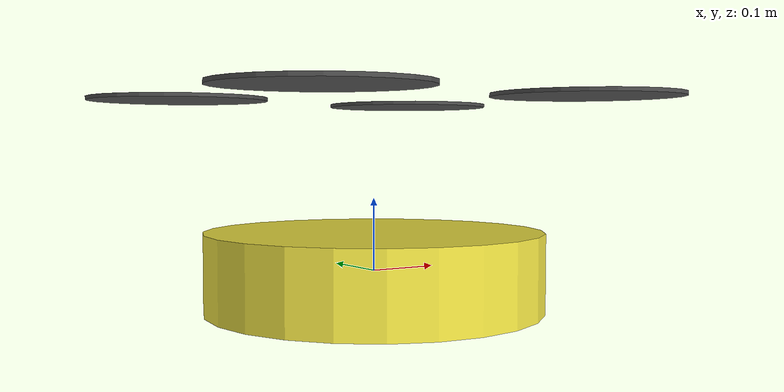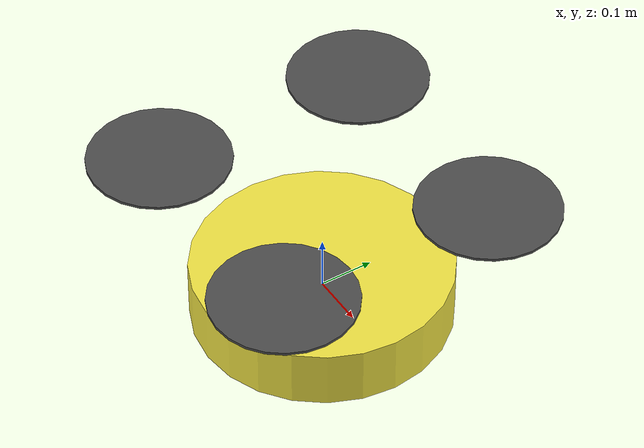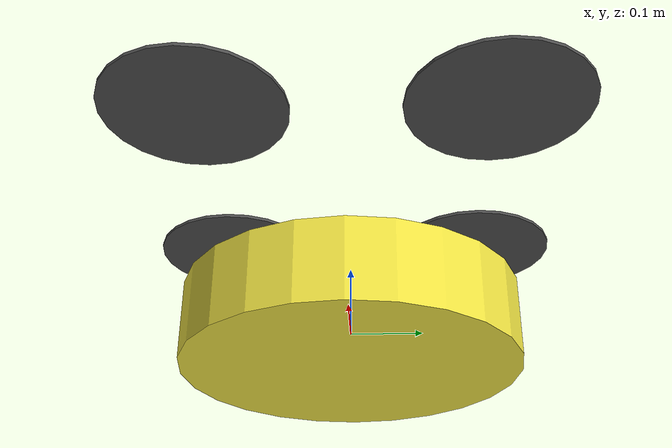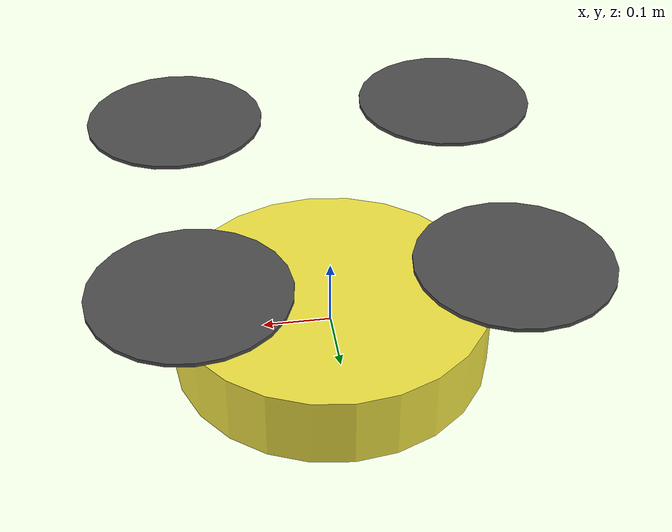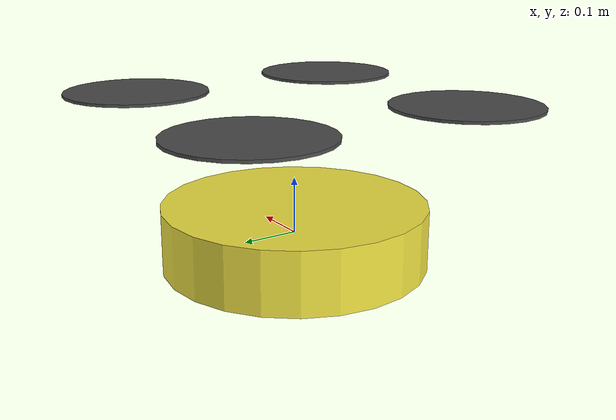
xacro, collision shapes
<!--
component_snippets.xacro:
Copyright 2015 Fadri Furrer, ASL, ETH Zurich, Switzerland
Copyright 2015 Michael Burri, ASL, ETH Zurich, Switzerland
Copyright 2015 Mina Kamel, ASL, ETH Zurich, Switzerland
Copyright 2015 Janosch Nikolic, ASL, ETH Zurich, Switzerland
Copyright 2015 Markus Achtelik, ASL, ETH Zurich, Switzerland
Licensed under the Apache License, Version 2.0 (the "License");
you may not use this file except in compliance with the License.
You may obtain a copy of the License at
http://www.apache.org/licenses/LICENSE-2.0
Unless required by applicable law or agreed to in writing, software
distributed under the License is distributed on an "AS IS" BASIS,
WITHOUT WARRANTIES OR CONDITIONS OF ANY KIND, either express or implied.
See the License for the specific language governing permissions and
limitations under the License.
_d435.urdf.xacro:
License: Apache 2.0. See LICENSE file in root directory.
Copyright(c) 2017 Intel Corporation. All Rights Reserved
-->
<?xml version="1.0"?>

<robot name="spacer5g" xmlns:xacro="http://ros.org/wiki/xacro">
  <!-- Properties that can be assigned at build time as arguments.
  Is there a reason not to make all properties arguments?
  -->
  <xacro:arg name='mavlink_addr' default='INADDR_ANY' />
  <xacro:arg name='mavlink_tcp_port' default='4560' />
  <xacro:arg name='mavlink_udp_port' default='14560' />
  <xacro:arg name='visual_material' default='DarkGrey' />
  <xacro:arg name='enable_mavlink_interface' default='true' />
  <xacro:arg name='enable_gps_plugin' default='true' />
  <xacro:arg name='gps_noise' default='false' />
  <xacro:arg name='enable_ground_truth' default='true' />
  <xacro:arg name='enable_logging' default='false' />
  <xacro:arg name='robot_namespace' default='' />
  <xacro:arg name='camera_namespace' default='' />

  <!-- macros for gazebo plugins, sensors -->
  <xacro:include filename="$(find robots_description)/urdf/component_snippets.xacro" />

  <!-- Instantiate spacer5g "mechanics" -->
  <xacro:include filename="$(find sesame_ul_uavs)/models/spacer5g/geometry.xacro" />

  <xacro:if value="$(arg enable_gps_plugin)">
    <!-- Instantiate gps plugin. -->
    <xacro:gps_plugin_macro
      namespace="${namespace}"
      gps_noise="$(arg gps_noise)"
      >
    </xacro:gps_plugin_macro>
  </xacro:if>

  <xacro:if value="$(arg enable_mavlink_interface)">
    <!-- Instantiate mavlink telemetry interface. -->
    <xacro:mavlink_interface_macro
      namespace="${namespace}"
      imu_sub_topic="/imu"
      mavlink_addr="$(arg mavlink_addr)"
      mavlink_tcp_port="$(arg mavlink_tcp_port)"
      mavlink_udp_port="$(arg mavlink_udp_port)"
      >
    </xacro:mavlink_interface_macro>
  </xacro:if>

  <!-- Mount an ADIS16448 IMU. -->
  <xacro:imu_plugin_macro
    namespace="${namespace}"
    imu_suffix=""
    parent_link="base_link"
    imu_topic="/imu"
    mass_imu_sensor="0.015"
    gyroscope_noise_density="0.0003394"
    gyroscopoe_random_walk="0.000038785"
    gyroscope_bias_correlation_time="1000.0"
    gyroscope_turn_on_bias_sigma="0.0087"
    accelerometer_noise_density="0.004"
    accelerometer_random_walk="0.006"
    accelerometer_bias_correlation_time="300.0"
    accelerometer_turn_on_bias_sigma="0.1960"
  >
    <inertia ixx="0.00001" ixy="0.0" ixz="0.0" iyy="0.00001" iyz="0.0" izz="0.00001" />
    <origin xyz="0 0 0" rpy="0 0 0" />
  </xacro:imu_plugin_macro>

  <xacro:if value="$(arg enable_ground_truth)">
    <!-- Mount an IMU providing ground truth. -->
    <xacro:imu_plugin_macro
      namespace="${namespace}"
      imu_suffix="gt"
      parent_link="base_link"
      imu_topic="ground_truth/imu"
      mass_imu_sensor="0.00001"
      gyroscope_noise_density="0.0"
      gyroscopoe_random_walk="0.0"
      gyroscope_bias_correlation_time="1000.0"
      gyroscope_turn_on_bias_sigma="0.0"
      accelerometer_noise_density="0.0"
      accelerometer_random_walk="0.0"
      accelerometer_bias_correlation_time="300.0"
      accelerometer_turn_on_bias_sigma="0.0"
    >
      <inertia ixx="0.00001" ixy="0.0" ixz="0.0" iyy="0.00001" iyz="0.0" izz="0.00001" />
      <origin xyz="0 0 0" rpy="0 0 0" />
    </xacro:imu_plugin_macro>

    <!-- Mount a generic odometry sensor providing ground truth. -->
    <xacro:odometry_plugin_macro
      namespace="${namespace}/ground_truth"
      odometry_sensor_suffix="gt"
      parent_link="base_link"
      pose_topic="pose"
      pose_with_covariance_topic="pose_with_covariance"
      position_topic="position"
      transform_topic="transform"
      odometry_topic="odometry"
      parent_frame_id="world"
      mass_odometry_sensor="0.00001"
      measurement_divisor="1"
      measurement_delay="0"
      unknown_delay="0.0"
      noise_normal_position="0 0 0"
      noise_normal_quaternion="0 0 0"
      noise_normal_linear_velocity="0 0 0"
      noise_normal_angular_velocity="0 0 0"
      noise_uniform_position="0 0 0"
      noise_uniform_quaternion="0 0 0"
      noise_uniform_linear_velocity="0 0 0"
      noise_uniform_angular_velocity="0 0 0"
      enable_odometry_map="false"
      odometry_map=""
      image_scale=""
    >
      <inertia ixx="0.00001" ixy="0.0" ixz="0.0" iyy="0.00001" iyz="0.0" izz="0.00001" /> <!-- [kg.m^2] [kg.m^2] [kg.m^2] [kg.m^2] [kg.m^2] [kg.m^2] -->
      <origin xyz="0.0 0.0 0.0" rpy="0.0 0.0 0.0" />
    </xacro:odometry_plugin_macro>
  </xacro:if>

  <xacro:if value="$(arg enable_logging)">
    <!-- Instantiate a logger -->
    <xacro:bag_plugin_macro
      namespace="${namespace}"
      bag_file="$(arg log_file)"
      rotor_velocity_slowdown_sim="${rotor_velocity_slowdown_sim}"
    >
    </xacro:bag_plugin_macro>
  </xacro:if>

  <gazebo>
  <plugin name="p3d_v2_base_controller" filename="libgazebo_ros_p3d_v2.so">
    <alwaysOn>true</alwaysOn>
    <updateRate>50.0</updateRate>
    <bodyName>base_link</bodyName>
    <topicName>ground_truth/state</topicName>
    <gaussianNoise>0.0</gaussianNoise>
    <frameName>map</frameName>
    <xyzOffsets>0 0 0</xyzOffsets>
    <rpyOffsets>0 0 0</rpyOffsets>
  </plugin>
  </gazebo>

</robot>

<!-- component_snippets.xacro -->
<robot xmlns:xacro="http://ros.org/wiki/xacro">
  <!-- Macro to add logging to a bag file. -->
  <xacro:macro name="bag_plugin_macro"
    params="namespace bag_file rotor_velocity_slowdown_sim">
    <gazebo>
      <plugin filename="librotors_gazebo_bag_plugin.so" name="rosbag">
        <robotNamespace>${namespace}</robotNamespace>
        <bagFileName>${bag_file}</bagFileName>
        <linkName>base_link</linkName>
        <frameId>base_link</frameId>
        <commandAttitudeThrustSubTopic>command/attitude</commandAttitudeThrustSubTopic>
        <commandAttitudeThrustPubTopic>command/attitude</commandAttitudeThrustPubTopic>
        <rotorVelocitySlowdownSim>${rotor_velocity_slowdown_sim}</rotorVelocitySlowdownSim>
      </plugin>
    </gazebo>
  </xacro:macro>

  <!-- Macro to add a camera. -->
  <xacro:macro name="camera_macro"
    params="namespace parent_link camera_suffix frame_rate
      horizontal_fov image_width image_height image_format min_distance
      max_distance noise_mean noise_stddev enable_visual *cylinder *origin">
    <link name="${namespace}/camera_${camera_suffix}_link">
      <collision>
        <origin xyz="0 0 0" rpy="0 0 0" />
        <geometry>
          <xacro:insert_block name="cylinder" />
        </geometry>
      </collision>
      <xacro:if value="${enable_visual}">
        <visual>
          <origin xyz="0 0 0" rpy="0 0 0" />
          <geometry>
            <xacro:insert_block name="cylinder" />
          </geometry>
          <material name="red" />
        </visual>
      </xacro:if>
      <inertial>
        <mass value="1e-5" />
        <origin xyz="0 0 0" rpy="0 0 0" />
        <inertia ixx="1e-6" ixy="0" ixz="0" iyy="1e-6" iyz="0" izz="1e-6" />
      </inertial>
    </link>
    <joint name="${namespace}/camera_${camera_suffix}_joint" type="fixed">
      <xacro:insert_block name="origin" />
      <parent link="${parent_link}" />
      <child link="${namespace}/camera_${camera_suffix}_link" />
    </joint>
    <gazebo reference="${namespace}/camera_${camera_suffix}_link">
      <sensor type="camera" name="${namespace}_camera_${camera_suffix}">
        <update_rate>${frame_rate}</update_rate>
        <camera name="head">
          <horizontal_fov>${horizontal_fov}</horizontal_fov>
          <image>
            <width>${image_width}</width>
            <height>${image_height}</height>
            <format>${image_format}</format>
          </image>
          <clip>
            <near>${min_distance}</near>
            <far>${max_distance}</far>
          </clip>
          <noise>
            <type>gaussian</type>
            <!-- Noise is sampled independently per pixel on each frame.
                 That pixel's noise value is added to each of its color
                 channels, which at that point lie in the range [0,1]. -->
            <mean>${noise_mean}</mean>
            <stddev>${noise_stddev}</stddev>
          </noise>
        </camera>
        <plugin name="${namespace}_camera_${camera_suffix}_controller" filename="libgazebo_ros_camera.so">
          <robotNamespace>${namespace}</robotNamespace>
          <alwaysOn>true</alwaysOn>
          <updateRate>${frame_rate}</updateRate>
          <cameraName>camera_${camera_suffix}</cameraName>
          <imageTopicName>image_raw</imageTopicName>
          <cameraInfoTopicName>camera_info</cameraInfoTopicName>
          <frameName>camera_${camera_suffix}_link</frameName>
          <hackBaseline>0.0</hackBaseline>
          <distortionK1>0.0</distortionK1>
          <distortionK2>0.0</distortionK2>
          <distortionK3>0.0</distortionK3>
          <distortionT1>0.0</distortionT1>
          <distortionT2>0.0</distortionT2>
        </plugin>
      </sensor>
    </gazebo>
  </xacro:macro>

  <!-- Macro to add the controller interface. -->
  <xacro:macro name="controller_plugin_macro" params="namespace imu_sub_topic">
    <gazebo>
      <plugin name="controller_interface" filename="librotors_gazebo_controller_interface.so">
        <robotNamespace>${namespace}</robotNamespace>
        <commandAttitudeThrustSubTopic>/command/attitude</commandAttitudeThrustSubTopic>
        <commandRateThrustSubTopic>/command/rate</commandRateThrustSubTopic>
        <commandMotorSpeedSubTopic>/command/motor_speed</commandMotorSpeedSubTopic>
        <imuSubTopic>/${imu_sub_topic}</imuSubTopic>
        <motorSpeedCommandPubTopic>/gazebo/command/motor_speed</motorSpeedCommandPubTopic>
      </plugin>
    </gazebo>
  </xacro:macro>

  <!-- Macro to add the gps plugin. -->
  <xacro:macro name="gps_plugin_macro" params="namespace gps_noise">
    <gazebo>
      <plugin name='gps_plugin' filename='libgazebo_gps_plugin.so'>
        <robotNamespace>${namespace}</robotNamespace>
        <gpsNoise>${gps_noise}</gpsNoise>
      </plugin>
      <plugin name='magnetometer_plugin' filename='libgazebo_magnetometer_plugin.so'>
        <robotNamespace/>
        <pubRate>20</pubRate>
        <noiseDensity>0.0004</noiseDensity>
        <randomWalk>6.4e-06</randomWalk>
        <biasCorrelationTime>600</biasCorrelationTime>
        <magTopic>/mag</magTopic>
      </plugin>
      <plugin name='barometer_plugin' filename='libgazebo_barometer_plugin.so'>
        <robotNamespace/>
        <pubRate>10</pubRate>
        <baroTopic>/baro</baroTopic>
      </plugin>
    </gazebo>
  </xacro:macro>

  <!-- Macro to add the mavlink interface. -->
  <xacro:macro name="mavlink_interface_macro" params="namespace imu_sub_topic mavlink_addr mavlink_tcp_port mavlink_udp_port octo:=false">
    <xacro:property name="is_octo" value="${octo}"/>
    <gazebo>
      <plugin name="mavlink_interface" filename="libgazebo_mavlink_interface.so">
        <robotNamespace>${namespace}</robotNamespace>
        <imuSubTopic>${imu_sub_topic}</imuSubTopic>
        <gpsSubTopic>/gps</gpsSubTopic>
        <magSubTopic>/mag</magSubTopic>
        <baroSubTopic>/baro</baroSubTopic>
        <mavlink_addr>$(arg mavlink_addr)</mavlink_addr>
        <mavlink_udp_port>$(arg mavlink_udp_port)</mavlink_udp_port>
        <mavlink_tcp_port>$(arg mavlink_tcp_port)</mavlink_tcp_port>
        <serialEnabled>0</serialEnabled>
        <serialDevice>/dev/ttyACM0</serialDevice>
        <baudRate>921600</baudRate>
        <qgc_addr>INADDR_ANY</qgc_addr>
        <qgc_udp_port>14550</qgc_udp_port>
        <sdk_addr>INADDR_ANY</sdk_addr>
        <sdk_udp_port>14540</sdk_udp_port>
        <hil_mode>0</hil_mode>
        <hil_state_level>0</hil_state_level>
        <vehicle_is_tailsitter>0</vehicle_is_tailsitter>
        <send_vision_estimation>1</send_vision_estimation>
        <send_odometry>0</send_odometry>
        <enable_lockstep>1</enable_lockstep>
        <use_tcp>1</use_tcp>
        <motorSpeedCommandPubTopic>/gazebo/command/motor_speed</motorSpeedCommandPubTopic>
        <control_channels>
          <channel name="rotor1">
            <input_index>0</input_index>
            <input_offset>0</input_offset>
            <input_scaling>1000</input_scaling>
            <zero_position_disarmed>0</zero_position_disarmed>
            <zero_position_armed>100</zero_position_armed>
            <joint_control_type>velocity</joint_control_type>
          </channel>
          <channel name="rotor2">
            <input_index>1</input_index>
            <input_offset>0</input_offset>
            <input_scaling>1000</input_scaling>
            <zero_position_disarmed>0</zero_position_disarmed>
            <zero_position_armed>100</zero_position_armed>
            <joint_control_type>velocity</joint_control_type>
          </channel>
          <channel name="rotor3">
            <input_index>2</input_index>
            <input_offset>0</input_offset>
            <input_scaling>1000</input_scaling>
            <zero_position_disarmed>0</zero_position_disarmed>
            <zero_position_armed>100</zero_position_armed>
            <joint_control_type>velocity</joint_control_type>
          </channel>
          <channel name="rotor4">
            <input_index>3</input_index>
            <input_offset>0</input_offset>
            <input_scaling>1000</input_scaling>
            <zero_position_disarmed>0</zero_position_disarmed>
            <zero_position_armed>100</zero_position_armed>
            <joint_control_type>velocity</joint_control_type>
          </channel>
          <channel name="rotor5">
            <input_index>4</input_index>
            <input_offset>0</input_offset>
            <input_scaling>1000</input_scaling>
            <zero_position_disarmed>0</zero_position_disarmed>
            <zero_position_armed>100</zero_position_armed>
            <joint_control_type>velocity</joint_control_type>
          </channel>
          <channel name="rotor6">
            <input_index>5</input_index>
            <input_offset>0</input_offset>
            <input_scaling>1000</input_scaling>
            <zero_position_disarmed>0</zero_position_disarmed>
            <zero_position_armed>100</zero_position_armed>
            <joint_control_type>velocity</joint_control_type>
          </channel>
          <!-- Add extra velocity outputs for rotors 7 and 8 -->
          <xacro:if value="${is_octo}">
            <channel name="rotor7">
              <input_index>6</input_index>
              <input_offset>0</input_offset>
              <input_scaling>1000</input_scaling>
              <zero_position_disarmed>0</zero_position_disarmed>
              <zero_position_armed>100</zero_position_armed>
              <joint_control_type>velocity</joint_control_type>
            </channel>
            <channel name="rotor8">
              <input_index>7</input_index>
              <input_offset>0</input_offset>
              <input_scaling>1000</input_scaling>
              <zero_position_disarmed>0</zero_position_disarmed>
              <zero_position_armed>100</zero_position_armed>
              <joint_control_type>velocity</joint_control_type>
            </channel>
          </xacro:if>
          <!-- Else -->
          <xacro:if value="${not is_octo}">
            <channel name="rotor7">
              <input_index>6</input_index>
              <input_offset>0</input_offset>
              <!-- joint limits [-0.524, 0.524] -->
              <input_scaling>0.524</input_scaling>
              <zero_position_disarmed>0</zero_position_disarmed>
              <zero_position_armed>0</zero_position_armed>
              <joint_control_type>position</joint_control_type>
              <joint_name>zephyr_delta_wing::flap_right_joint</joint_name>
              <joint_control_pid>
                <p>10.0</p>
                <i>0</i>
                <d>0</d>
                <iMax>0</iMax>
                <iMin>0</iMin>
                <cmdMax>20</cmdMax>
                <cmdMin>-20</cmdMin>
              </joint_control_pid>
            </channel>
            <channel name="rotor8">
              <input_index>7</input_index>
              <input_offset>0</input_offset>
              <input_scaling>0.524</input_scaling>
              <zero_position_disarmed>0</zero_position_disarmed>
              <zero_position_armed>0</zero_position_armed>
              <joint_control_type>position</joint_control_type>
            </channel>
          </xacro:if>
        </control_channels>
      </plugin>
    </gazebo>
  </xacro:macro>

  <!-- Macro to add an IMU. -->
  <xacro:macro name="imu_plugin_macro"
    params="namespace imu_suffix parent_link imu_topic
      mass_imu_sensor gyroscope_noise_density gyroscopoe_random_walk
      gyroscope_bias_correlation_time gyroscope_turn_on_bias_sigma
      accelerometer_noise_density accelerometer_random_walk
      accelerometer_bias_correlation_time accelerometer_turn_on_bias_sigma
      *inertia *origin">
    <!-- IMU link -->
    <link name="${namespace}/imu${imu_suffix}_link">
      <inertial>
        <xacro:insert_block name="inertia" />
        <mass value="${mass_imu_sensor}" />  <!-- [kg] -->
        <origin xyz="0 0 0" rpy="0 0 0" />
      </inertial>
    </link>
    <!-- IMU joint -->
    <joint name="${namespace}/imu${imu_suffix}_joint" type="revolute">
      <xacro:insert_block name="origin" />
      <parent link="${parent_link}" />
      <child link="${namespace}/imu${imu_suffix}_link" />
      <limit upper="0" lower="0" effort="0" velocity="0" />
    </joint>
    <gazebo>
      <plugin filename="libgazebo_imu_plugin.so" name="rotors_gazebo_imu${imu_suffix}_plugin">
      <!-- A good description of the IMU parameters can be found in the kalibr documentation:
           https://github.com/ethz-asl/kalibr/wiki/IMU-Noise-Model-and-Intrinsics -->
        <robotNamespace>${namespace}</robotNamespace> <!-- (string, required): ros namespace in which the messages are published -->
        <linkName>${namespace}/imu${imu_suffix}_link</linkName> <!-- (string, required): name of the body which holds the IMU sensor -->
        <imuTopic>${imu_topic}</imuTopic> <!-- (string): name of the sensor output topic and prefix of service names (defaults to imu) -->
        <gyroscopeNoiseDensity>${gyroscope_noise_density}</gyroscopeNoiseDensity> <!-- Gyroscope noise density (two-sided spectrum) [rad/s/sqrt(Hz)] -->
        <gyroscopeRandomWalk>${gyroscopoe_random_walk}</gyroscopeRandomWalk> <!-- Gyroscope bias random walk [rad/s/s/sqrt(Hz)] -->
        <gyroscopeBiasCorrelationTime>${gyroscope_bias_correlation_time}</gyroscopeBiasCorrelationTime> <!-- Gyroscope bias correlation time constant [s] -->
        <gyroscopeTurnOnBiasSigma>${gyroscope_turn_on_bias_sigma}</gyroscopeTurnOnBiasSigma> <!-- Gyroscope turn on bias standard deviation [rad/s] -->
        <accelerometerNoiseDensity>${accelerometer_noise_density}</accelerometerNoiseDensity> <!-- Accelerometer noise density (two-sided spectrum) [m/s^2/sqrt(Hz)] -->
        <accelerometerRandomWalk>${accelerometer_random_walk}</accelerometerRandomWalk> <!-- Accelerometer bias random walk. [m/s^2/s/sqrt(Hz)] -->
        <accelerometerBiasCorrelationTime>${accelerometer_bias_correlation_time}</accelerometerBiasCorrelationTime> <!-- Accelerometer bias correlation time constant [s] -->
        <accelerometerTurnOnBiasSigma>${accelerometer_turn_on_bias_sigma}</accelerometerTurnOnBiasSigma> <!-- Accelerometer turn on bias standard deviation [m/s^2] -->
      </plugin>
    </gazebo>
  </xacro:macro>

<!-- Macro to add a generic odometry sensor. -->
  <xacro:macro name="odometry_plugin_macro"
    params="
      namespace odometry_sensor_suffix parent_link pose_topic pose_with_covariance_topic
      position_topic transform_topic odometry_topic parent_frame_id
      mass_odometry_sensor measurement_divisor measurement_delay unknown_delay
      noise_normal_position noise_normal_quaternion noise_normal_linear_velocity
      noise_normal_angular_velocity noise_uniform_position
      noise_uniform_quaternion noise_uniform_linear_velocity
      noise_uniform_angular_velocity enable_odometry_map odometry_map
      image_scale *inertia *origin">
    <!-- odometry link -->
    <link name="${namespace}/odometry_sensor${odometry_sensor_suffix}_link">
      <inertial>
        <xacro:insert_block name="inertia" />
        <mass value="${mass_odometry_sensor}" />  <!-- [kg] -->
      </inertial>
    </link>
    <!-- odometry joint -->
    <joint name="${namespace}/odometry_sensor${odometry_sensor_suffix}_joint" type="revolute">
      <parent link="${parent_link}" />
      <xacro:insert_block name="origin" />
      <child link="${namespace}/odometry_sensor${odometry_sensor_suffix}_link" />
      <limit upper="0" lower="0" effort="0" velocity="0" />
    </joint>
    <gazebo>
      <plugin filename="libgazebo_odometry_plugin.so" name="odometry_sensor${odometry_sensor_suffix}">
        <linkName>${namespace}/odometry_sensor${odometry_sensor_suffix}_link</linkName>
        <robotNamespace>${namespace}</robotNamespace>
        <poseTopic>${pose_topic}</poseTopic>
        <poseWithCovarianceTopic>${pose_with_covariance_topic}</poseWithCovarianceTopic>
        <positionTopic>${position_topic}</positionTopic>
        <transformTopic>${transform_topic}</transformTopic>
        <odometryTopic>${odometry_topic}</odometryTopic>
        <parentFrameId>${parent_frame_id}</parentFrameId>  <!-- Use the scoped link name here. e.g. Model::link. -->
        <measurementDivisor>${measurement_divisor}</measurementDivisor> <!-- only every (seq % measurementDivisor) == 0 measurement is published [int] -->
        <measurementDelay>${measurement_delay}</measurementDelay> <!-- time that measurement gets held back before it's published in [simulation cycles (int)] -->
        <unknownDelay>${unknown_delay}</unknownDelay> <!-- additional delay, that just gets added to the timestamp [s] -->
        <noiseNormalPosition>${noise_normal_position}</noiseNormalPosition> <!-- standard deviation of additive white gaussian noise [m] -->
        <noiseNormalQuaternion>${noise_normal_quaternion}</noiseNormalQuaternion> <!-- standard deviation white gaussian noise [rad]: q_m = q*quaternionFromSmallAngleApproximation(noiseNormalQ) -->
        <noiseNormalLinearVelocity>${noise_normal_linear_velocity}</noiseNormalLinearVelocity> <!-- standard deviation of additive white gaussian noise [m/s] -->
        <noiseNormalAngularVelocity>${noise_normal_angular_velocity}</noiseNormalAngularVelocity> <!-- standard deviation of additive white gaussian noise [rad/s] -->
        <noiseUniformPosition>${noise_uniform_position}</noiseUniformPosition> <!-- symmetric bounds of uniform noise [m] -->
        <noiseUniformQuaternion>${noise_uniform_quaternion}</noiseUniformQuaternion> <!-- symmetric bounds of uniform noise [rad], computation see above -->
        <noiseUniformLinearVelocity>${noise_uniform_linear_velocity}</noiseUniformLinearVelocity>  <!-- symmetric bounds of uniform noise [m/s] -->
        <noiseUniformAngularVelocity>${noise_uniform_angular_velocity}</noiseUniformAngularVelocity>  <!-- symmetric bounds of uniform noise [rad/s] -->
        <xacro:if value="${enable_odometry_map}">
          <covarianceImage>package://rotors_gazebo/resource/${odometry_map}</covarianceImage>
          <covarianceImageScale>${image_scale}</covarianceImageScale>
        </xacro:if>
      </plugin>
    </gazebo>
  </xacro:macro>

  <!-- Macro to add the wind plugin. -->
  <xacro:macro name="wind_plugin_macro"
    params="namespace xyz_offset wind_direction wind_force_mean
      wind_gust_direction wind_gust_duration wind_gust_start
      wind_gust_force_mean">
    <gazebo>
      <plugin filename="librotors_gazebo_wind_plugin.so" name="wind_plugin">
        <frameId>base_link</frameId>
        <linkName>base_link</linkName>
        <robotNamespace>${namespace}</robotNamespace>
        <xyzOffset>${xyz_offset}</xyzOffset>
        <windDirection>${wind_direction}</windDirection>
        <windForceMean>${wind_force_mean}</windForceMean>
        <windGustDirection>${wind_gust_direction}</windGustDirection>
        <windGustDuration>${wind_gust_duration}</windGustDuration>
        <windGustStart>${wind_gust_start}</windGustStart>
        <windGustForceMean>${wind_gust_force_mean}</windGustForceMean>
      </plugin>
    </gazebo>
  </xacro:macro>

  <!-- VI sensor macros -->
  <!-- Macro to add a VI-sensor camera. -->
  <xacro:macro name="vi_sensor_camera_macro"
    params="namespace parent_link camera_suffix frame_rate *origin">
    <xacro:camera_macro
      namespace="${namespace}"
      parent_link="${parent_link}"
      camera_suffix="${camera_suffix}"
      frame_rate="${frame_rate}"
      horizontal_fov="1.3962634"
      image_width="752"
      image_height="480"
      image_format="L8"
      min_distance="0.02"
      max_distance="30"
      noise_mean="0.0"
      noise_stddev="0.007"
      enable_visual="false">
      <cylinder length="0.01" radius="0.007" />
      <xacro:insert_block name="origin" />
    </xacro:camera_macro>
  </xacro:macro>

  <!-- Macro to add a depth camera on the VI-sensor. -->
  <xacro:macro name="vi_sensor_depth_macro"
    params="namespace parent_link camera_suffix frame_rate *origin">
    <link name="${namespace}/camera_${camera_suffix}_link">
      <collision>
        <origin xyz="0 0 0" rpy="0 0 0" />
        <geometry>
          <cylinder length="0.01" radius="0.007" />
        </geometry>
      </collision>
      <inertial>
        <mass value="1e-5" />
        <origin xyz="0 0 0" rpy="0 0 0" />
        <inertia ixx="1e-6" ixy="0" ixz="0" iyy="1e-6" iyz="0" izz="1e-6" />
      </inertial>
    </link>
    <joint name="${namespace}/camera_${camera_suffix}_joint" type="fixed">
      <xacro:insert_block name="origin" />
      <parent link="${parent_link}" />
      <child link="${namespace}/camera_${camera_suffix}_link" />
      <limit upper="0" lower="0" effort="0" velocity="0" />
    </joint>
    <!-- Optical center of camera -->
    <link name="${namespace}/camera_${camera_suffix}_optical_center_link" />
    <joint name="${namespace}/camera_${camera_suffix}_optical_center_joint" type="fixed">
      <origin xyz="0 0 0" rpy="${-PI/2} 0 ${-PI/2}" />
      <parent link="${namespace}/camera_${camera_suffix}_link" />
      <child link="${namespace}/camera_${camera_suffix}_optical_center_link" />
      <limit upper="0" lower="0" effort="0" velocity="0" />
    </joint>
    <gazebo reference="${namespace}/camera_${camera_suffix}_link">
      <sensor type="depth" name="${namespace}_camera_{camera_suffix}">
        <always_on>true</always_on>
        <update_rate>${frame_rate}</update_rate>
        <camera>
          <horizontal_fov>2</horizontal_fov>
          <image>
            <format>L8</format>
            <width>640</width>
            <height>480</height>
          </image>
          <clip>
            <near>0.01</near>
            <far>100</far>
          </clip>
        </camera>
        <plugin name="${namespace}_camera_{camera_suffix}" filename="libgazebo_ros_openni_kinect.so">
          <robotNamespace>${namespace}</robotNamespace>
          <alwaysOn>true</alwaysOn>
          <baseline>0.11</baseline>
          <updateRate>${frame_rate}</updateRate>
          <cameraName>camera_${camera_suffix}</cameraName>
          <imageTopicName>camera/image_raw</imageTopicName>
          <cameraInfoTopicName>camera/camera_info</cameraInfoTopicName>
          <depthImageTopicName>depth/disparity</depthImageTopicName>
          <depthImageCameraInfoTopicName>depth/camera_info</depthImageCameraInfoTopicName>
          <pointCloudTopicName>depth/points</pointCloudTopicName>
          <frameName>camera_${camera_suffix}_optical_center_link</frameName>
          <pointCloudCutoff>0.5</pointCloudCutoff>
          <distortionK1>0.0</distortionK1>
          <distortionK2>0.0</distortionK2>
          <distortionK3>0.0</distortionK3>
          <distortionT1>0.0</distortionT1>
          <distortionT2>0.0</distortionT2>
        </plugin>
      </sensor>
    </gazebo>
  </xacro:macro>

  <!-- VI-Sensor Macro -->
  <xacro:macro name="vi_sensor_macro" params="namespace parent_link *origin">
    <!-- Vi Sensor Link -->
    <link name="${namespace}/vi_sensor_link">
      <collision>
        <origin xyz="0 0 0" rpy="0 0 0" />
        <geometry>
          <box size="0.03 0.133 0.057" />
        </geometry>
      </collision>

      <visual>
        <origin xyz="0 0 0" rpy="0 0 0" />
        <geometry>
          <mesh filename="package://rotors_description/meshes/vi_sensor.dae" scale="1 1 1" />
        </geometry>
      </visual>

      <inertial>
        <mass value="0.13" />
        <origin xyz="0 0 0" rpy="0 0 0" />
        <inertia ixx="1e-6" ixy="0" ixz="0" iyy="1e-6" iyz="0" izz="1e-6" />
      </inertial>
    </link>
    <joint name="{namespace}_vi_sensor_joint" type="fixed">
      <xacro:insert_block name="origin" />
      <parent link="${parent_link}" />
      <child link="${namespace}/vi_sensor_link" />
    </joint>
    <!-- Cameras -->
    <xacro:if value="$(arg enable_cameras)">
      <!-- Left Camera -->
      <xacro:vi_sensor_camera_macro
        namespace="${namespace}" parent_link="${namespace}/vi_sensor_link"
        camera_suffix="left" frame_rate="30.0">
        <origin xyz="0.015 0.055 0.0065" rpy="0 0 0" />
      </xacro:vi_sensor_camera_macro>
      <!-- Right Camera -->
      <xacro:vi_sensor_camera_macro namespace="${namespace}"
        parent_link="${namespace}/vi_sensor_link"
        camera_suffix="right" frame_rate="30.0">
        <origin xyz="0.015 -0.055 0.0065" rpy="0 0 0" />
      </xacro:vi_sensor_camera_macro>
    </xacro:if>

    <!-- Depth Sensor -->
    <xacro:if value="$(arg enable_depth)">
      <xacro:vi_sensor_depth_macro
        namespace="${namespace}" parent_link="${namespace}/vi_sensor_link"
        camera_suffix="depth" frame_rate="30.0">
        <origin xyz="0.015 0.055 0.0065" rpy="0 0 0" />
      </xacro:vi_sensor_depth_macro>
    </xacro:if>

    <!-- Groundtruth -->
    <xacro:if value="$(arg enable_ground_truth)">
      <!-- Odometry Sensor -->
      <xacro:odometry_plugin_macro
        namespace="${namespace}/ground_truth"
        odometry_sensor_suffix=""
        parent_link="${namespace}/vi_sensor_link"
        pose_topic="pose"
        pose_with_covariance_topic="pose_with_covariance"
        position_topic="position"
        transform_topic="transform"
        odometry_topic="odometry"
        parent_frame_id="world"
        mass_odometry_sensor="0.00001"
        measurement_divisor="1"
        measurement_delay="0"
        unknown_delay="0.0"
        noise_normal_position="0 0 0"
        noise_normal_quaternion="0 0 0"
        noise_normal_linear_velocity="0 0 0"
        noise_normal_angular_velocity="0 0 0"
        noise_uniform_position="0 0 0"
        noise_uniform_quaternion="0 0 0"
        noise_uniform_linear_velocity="0 0 0"
        noise_uniform_angular_velocity="0 0 0"
        enable_odometry_map="false"
        odometry_map=""
        image_scale="">
        <inertia ixx="0.00001" ixy="0.0" ixz="0.0" iyy="0.00001" iyz="0.0" izz="0.00001" /> <!-- [kg.m^2] [kg.m^2] [kg.m^2] [kg.m^2] [kg.m^2] [kg.m^2] -->
        <origin xyz="0.0 0.0 0.0" rpy="0.0 0.0 0.0" />
      </xacro:odometry_plugin_macro>
    </xacro:if>

    <!-- ADIS16448 IMU. -->
    <xacro:imu_plugin_macro
      namespace="${namespace}"
      imu_suffix=""
      parent_link="${namespace}/vi_sensor_link"
      imu_topic="/imu"
      mass_imu_sensor="0.015"
      gyroscope_noise_density="0.0003394"
      gyroscopoe_random_walk="0.000038785"
      gyroscope_bias_correlation_time="1000.0"
      gyroscope_turn_on_bias_sigma="0.0087"
      accelerometer_noise_density="0.004"
      accelerometer_random_walk="0.006"
      accelerometer_bias_correlation_time="300.0"
      accelerometer_turn_on_bias_sigma="0.1960">
      <inertia ixx="0.00001" ixy="0.0" ixz="0.0" iyy="0.00001" iyz="0.0" izz="0.00001" />
      <origin xyz="0.015 0 0.0113" rpy="0 0 0" />
    </xacro:imu_plugin_macro>
  </xacro:macro>

  <!-- Macro to add a laser scanner -->
  <xacro:macro name="laser_scanner"
    params="namespace id pub_topic tf parent_link update_rate sample_count
    angle_min angle_max range_min range_max range_res visualize:=false *origin length:=0.03 radius:=0.04">
    <joint name="${namespace}/laser_${id}_joint" type="fixed">
      <xacro:insert_block name="origin" />
      <parent link="${parent_link}"/>
      <child link="${namespace}/laser_${id}_link"/>
    </joint>
    <link name="${namespace}/laser_${id}_link">
      <collision>
        <origin xyz="0 0 0" rpy="0 0 0"/>
        <geometry>
          <cylinder length="${length}" radius="${radius}" />
        </geometry>
      </collision>
      <visual>
        <origin xyz="0 0 0" rpy="0 0 0"/>
        <geometry>
          <cylinder length="${length}" radius="${radius}" />
        </geometry>
      </visual>
      <inertial>
        <mass value="1e-5" />
        <origin xyz="0 0 0" rpy="0 0 0"/>
        <inertia ixx="1e-6" ixy="0" ixz="0" iyy="1e-6" iyz="0" izz="1e-6" />
      </inertial>
    </link>
    <gazebo reference="${namespace}/laser_${id}_link">
      <sensor type="ray" name="${namespace}_laser_${id}_sensor">
        <pose>0 0 0 0 0 0</pose>
        <visualize>${visualize}</visualize>
        <update_rate>${update_rate}</update_rate>
        <ray>
          <scan>
            <horizontal>
              <samples>${sample_count}</samples>
              <resolution>1</resolution>
              <min_angle>${angle_min}</min_angle>
              <max_angle>${angle_max}</max_angle>
            </horizontal>
          </scan>
          <range>
            <min>${range_min}</min>
            <max>${range_max}</max>
            <resolution>${range_res}</resolution>
          </range>
          <noise>
            <type>gaussian</type>
            <mean>0.0</mean>
            <stddev>0.01</stddev>
          </noise>
        </ray>
        <plugin name="${namespace}_laser_${id}_controller" filename="libgazebo_ros_laser.so">
          <robotNamespace>${namespace}</robotNamespace>
          <topicName>${pub_topic}</topicName>
          <frameName>${tf}</frameName>
        </plugin>
      </sensor>
    </gazebo>
  </xacro:macro>

</robot>

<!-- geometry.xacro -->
<robot name="spacer5g" xmlns:xacro="http://ros.org/wiki/xacro">
  <!-- Properties -->
  <xacro:property name="model_name" value="spacer5g" />
  <xacro:property name="description_package" value="sesame_ul_uavs" />
  <xacro:property name="namespace" value="$(arg robot_namespace)" />
  <xacro:property name="cam_namespace" value="$(arg camera_namespace)" />
  <xacro:property name="rotor_velocity_slowdown_sim" value="10" />
  <xacro:property name="mesh_file" value="multirotor.dae" />
  <xacro:property name="mesh_scale" value="0.001 0.001 0.001"/>
  <xacro:property name="mesh_scale_prop" value="0.001 0.001 0.001"/>
  <xacro:property name="mass" value="1.5" /> <!-- [kg] -->
  <xacro:property name="body_width" value="0.47" />
  <xacro:property name="body_height" value="0.11" />
  <xacro:property name="mass_rotor" value="0.005" /> <!-- [kg] -->
  <xacro:property name="arm_length_front_x" value="0.2025" />
  <xacro:property name="arm_length_back_x" value="0.2025" />
  <xacro:property name="arm_length_front_y" value="0.2025" />
  <xacro:property name="arm_length_back_y" value="0.2025" />
  <xacro:property name="rotor_offset_top" value="0.023" />
  <xacro:property name="radius_rotor" value="0.128" />
  <xacro:property name="motor_constant" value="12.54858e-06" /> <!-- [kg.m/s^2] -->
  <xacro:property name="moment_constant" value="0.08" />
  <xacro:property name="time_constant_up" value="0.0125" />
  <xacro:property name="time_constant_down" value="0.025" />
  <xacro:property name="max_rot_velocity" value="1100" /> <!-- [rad/s] -->
  <xacro:property name="sin30" value="0.5" />
  <xacro:property name="cos30" value="0.866025403784" />
  <xacro:property name="sqrt2" value="1.4142135623730951" />
  <xacro:property name="rotor_drag_coefficient" value="8.06428e-04" />
  <xacro:property name="rolling_moment_coefficient" value="0.000001" />
  <xacro:property name="color" value="$(arg visual_material)" />

  <!-- Property Blocks -->
  <xacro:property name="body_inertia">
    <inertia ixx="0.0347563" ixy="0.0" ixz="0.0" iyy="0.0458929" iyz="0.0" izz="0.0977" /> <!-- [kg.m^2] [kg.m^2] [kg.m^2] [kg.m^2] [kg.m^2] [kg.m^2] -->
  </xacro:property>

  <!-- inertia of a single rotor, assuming it is a cuboid. Height=3mm, width=15mm -->
  <xacro:property name="rotor_inertia">
    <inertia
    ixx="${1/12 * mass_rotor * (0.015 * 0.015 + 0.003 * 0.003) * rotor_velocity_slowdown_sim}"
    iyy="${1/12 * mass_rotor * (4 * radius_rotor * radius_rotor + 0.003 * 0.003) * rotor_velocity_slowdown_sim}"
    izz="${1/12 * mass_rotor * (4 * radius_rotor * radius_rotor + 0.015 * 0.015) * rotor_velocity_slowdown_sim}"
    ixy="0.0" ixz="0.0"  iyz="0.0" /> <!-- [kg.m^2] [kg.m^2] [kg.m^2] [kg.m^2] [kg.m^2] [kg.m^2] -->
  </xacro:property>

  <!--Property cylinder_camera-->
  <xacro:property name="camera_cylinder">
    <box size="0.025 0.1 0.02"/>
  </xacro:property>

  <!-- Included URDF Files -->
  <xacro:include filename="$(find robots_description)/urdf/multirotor_base.xacro" />
  <xacro:include filename="$(find robots_description)/urdf/component_snippets.xacro" />
  <xacro:include filename="$(find sesame_ul_uavs)/urdf/_d435.urdf.xacro" />

  <xacro:sensor_d435
    name="camera"
    namespace="${cam_namespace}"
    parent="base_link">
    <origin xyz="0 0 0" rpy="0 0 0"/>
  </xacro:sensor_d435>

  <!-- Instantiate multirotor_base_macro once -->
  <xacro:multirotor_base_macro
    model_name="${model_name}"
    description_package="${description_package}"
    robot_namespace="${namespace}"
    mass="${mass}"
    body_width="${body_width}"
    body_height="${body_height}"
    mesh_file="${mesh_file}"
    mesh_scale="${mesh_scale}"
    color="DarkGrey"
    >
    <xacro:insert_block name="body_inertia" />
  </xacro:multirotor_base_macro>

  <!-- Instantiate rotors -->

    <xacro:vertical_rotor robot_namespace="${namespace}"
    suffix="front_right"
    direction="ccw"
    motor_constant="${motor_constant}"
    moment_constant="${moment_constant}"
    description_package="${description_package}"
    parent="base_link"
    mass_rotor="${mass_rotor}"
    radius_rotor="${radius_rotor}"
    time_constant_up="${time_constant_up}"
    time_constant_down="${time_constant_down}"
    max_rot_velocity="${max_rot_velocity}"
    motor_number="0"
    rotor_drag_coefficient="${rotor_drag_coefficient}"
    rolling_moment_coefficient="${rolling_moment_coefficient}"
    mesh="prop"
    mesh_scale="${mesh_scale_prop}"
    color="${color}">
    <origin xyz="0.2025 -0.2025 0.24" rpy="0 0 0" />
    <xacro:insert_block name="rotor_inertia" />
  </xacro:vertical_rotor>

  <xacro:vertical_rotor robot_namespace="${namespace}"
    suffix="back_left"
    direction="ccw"
    motor_constant="${motor_constant}"
    moment_constant="${moment_constant}"
    description_package="${description_package}"
    parent="base_link"
    mass_rotor="${mass_rotor}"
    radius_rotor="${radius_rotor}"
    time_constant_up="${time_constant_up}"
    time_constant_down="${time_constant_down}"
    max_rot_velocity="${max_rot_velocity}"
    motor_number="1"
    rotor_drag_coefficient="${rotor_drag_coefficient}"
    rolling_moment_coefficient="${rolling_moment_coefficient}"
    mesh="prop"
    mesh_scale="${mesh_scale_prop}"
    color="DarkGrey">
    <origin xyz="-0.2025 0.2025 0.24" rpy="0 0 0" />
    <xacro:insert_block name="rotor_inertia" />
  </xacro:vertical_rotor>

  <xacro:vertical_rotor robot_namespace="${namespace}"
    suffix="front_left"
    direction="cw"
    motor_constant="${motor_constant}"
    description_package="${description_package}"
    moment_constant="${moment_constant}"
    parent="base_link"
    mass_rotor="${mass_rotor}"
    radius_rotor="${radius_rotor}"
    time_constant_up="${time_constant_up}"
    time_constant_down="${time_constant_down}"
    max_rot_velocity="${max_rot_velocity}"
    motor_number="2"
    rotor_drag_coefficient="${rotor_drag_coefficient}"
    rolling_moment_coefficient="${rolling_moment_coefficient}"
    mesh="prop"
    mesh_scale="${mesh_scale_prop}"
    color="${color}">
    <origin xyz="0.2025 0.2025 0.24" rpy="0 0 0" />
    <xacro:insert_block name="rotor_inertia" />
  </xacro:vertical_rotor>

  <xacro:vertical_rotor robot_namespace="${namespace}"
    suffix="back_right"
    direction="cw"
    description_package="${description_package}"
    motor_constant="${motor_constant}"
    moment_constant="${moment_constant}"
    parent="base_link"
    mass_rotor="${mass_rotor}"
    radius_rotor="${radius_rotor}"
    time_constant_up="${time_constant_up}"
    time_constant_down="${time_constant_down}"
    max_rot_velocity="${max_rot_velocity}"
    motor_number="3"
    rotor_drag_coefficient="${rotor_drag_coefficient}"
    rolling_moment_coefficient="${rolling_moment_coefficient}"
    mesh="prop"
    mesh_scale="${mesh_scale_prop}"
    color="DarkGrey">
    <origin xyz="-0.2025 -0.2025 0.24" rpy="0 0 0" />
    <xacro:insert_block name="rotor_inertia" />
  </xacro:vertical_rotor>

</robot>

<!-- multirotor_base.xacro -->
<robot xmlns:xacro="http://ros.org/wiki/xacro">
  <!-- Main multirotor link -->
  <xacro:macro name="multirotor_base_macro"
    params="model_name description_package:=robots_description robot_namespace robot_base_link:=base_link mass body_width body_height height_offset:=0 mesh_file mesh_scale color *inertia">
    <link name="${robot_base_link}"></link>

    <joint name="base_joint" type="fixed">
      <origin xyz="0 0 0" rpy="0 0 0" />
      <parent link="${robot_base_link}" />
      <child link="base_link_inertia" />
    </joint>

    <link name="base_link_inertia">
      <inertial>
        <mass value="${mass}" />  <!-- [kg] -->
        <origin xyz="0 0 0" />
        <xacro:insert_block name="inertia" />
      </inertial>

      <visual>
        <origin xyz="0 0 0" rpy="0 0 0" />
        <geometry>
          <mesh filename="package://${description_package}/models/${model_name}/meshes/${mesh_file}"
            scale="${mesh_scale}" />
        </geometry>
      </visual>

      <collision>
        <origin xyz="0 0 ${height_offset}" rpy="0 0 0" />
        <geometry>
          <cylinder length="${body_height}" radius="${0.5*body_width}"/>
        </geometry>
      </collision>
    </link>

    <!-- attach multirotor_base_plugin to the base_link -->
    <gazebo>
      <plugin filename="libgazebo_multirotor_base_plugin.so" name="rosbag">
        <robotNamespace>${robot_namespace}</robotNamespace>
        <linkName>base_link</linkName>
        <rotorVelocitySlowdownSim>${rotor_velocity_slowdown_sim}</rotorVelocitySlowdownSim>
      </plugin>
    </gazebo>
    <gazebo reference="base_link">
      <material>Gazebo/${color}</material>
      <collision name='base_link_inertia_collision'>
        <surface>
          <contact>
            <ode>
              <min_depth>0.001</min_depth>
              <max_vel>0.0</max_vel>
            </ode>
          </contact>
          <friction>
            <ode/>
          </friction>
        </surface>
      </collision>
   </gazebo>
  </xacro:macro>

  <!-- Rotor joint and link -->
  <xacro:macro name="vertical_rotor"
    params="robot_namespace description_package:=robots_description suffix direction motor_constant moment_constant parent mass_rotor radius_rotor time_constant_up time_constant_down max_rot_velocity motor_number rotor_drag_coefficient rolling_moment_coefficient color mesh mesh_scale *origin *inertia">
    <joint name="rotor_${motor_number}_joint" type="continuous">
      <xacro:insert_block name="origin" />
      <axis xyz="0 0 1" />
      <!-- TODO(ff): not currently set because it's not yet supported -->
      <parent link="${parent}" />
      <child link="rotor_${motor_number}" />

    </joint>
    <!-- TODO(ff): not currently set because it's not yet supported -->
    <link name="rotor_${motor_number}">
      <inertial>
        <mass value="${mass_rotor}" /> <!-- [kg] -->
        <xacro:insert_block name="inertia" />
      </inertial>
      <visual>
        <geometry>

          <mesh filename="package://${description_package}/models/${model_name}/meshes/${mesh}_${direction}.dae"
            scale="${mesh_scale}" />
        </geometry>
      </visual>
      <collision>
        <geometry>
          <cylinder length="0.005" radius="${radius_rotor}" />
        </geometry>
      </collision>
    </link>
    <gazebo>
      <plugin name="${suffix}_motor_model" filename="libgazebo_motor_model.so">
        <robotNamespace>${robot_namespace}</robotNamespace>
        <jointName>rotor_${motor_number}_joint</jointName>
        <linkName>rotor_${motor_number}</linkName>
        <turningDirection>${direction}</turningDirection>
        <timeConstantUp>${time_constant_up}</timeConstantUp>
        <timeConstantDown>${time_constant_down}</timeConstantDown>
        <maxRotVelocity>${max_rot_velocity}</maxRotVelocity>
        <motorConstant>${motor_constant}</motorConstant>
        <momentConstant>${moment_constant}</momentConstant>
        <commandSubTopic>/gazebo/command/motor_speed</commandSubTopic>
        <motorNumber>${motor_number}</motorNumber>
        <rotorDragCoefficient>${rotor_drag_coefficient}</rotorDragCoefficient>
        <rollingMomentCoefficient>${rolling_moment_coefficient}</rollingMomentCoefficient>
        <motorSpeedPubTopic>/motor_speed/${motor_number}</motorSpeedPubTopic>
        <rotorVelocitySlowdownSim>${rotor_velocity_slowdown_sim}</rotorVelocitySlowdownSim>
      </plugin>
    </gazebo>
    <gazebo reference="rotor_${motor_number}">
      <material>Gazebo/${color}</material>
    </gazebo>
  </xacro:macro>
</robot>

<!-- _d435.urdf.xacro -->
<robot name="sensor_d435" xmlns:xacro="http://ros.org/wiki/xacro">
  <!--File includes-->
  <xacro:include filename="$(find sesame_ul_uavs)/urdf/_d435_v2.gazebo.xacro"/>

  <xacro:macro name="sensor_d435" params="name namespace parent *origin">

    <xacro:property name="topics_ns" value="${namespace}" />
    <!--xacro:property name="name" value="camera" /-->
    <xacro:property name="M_PI" value="3.1415926535897931" />

    <!-- The following values are approximate, and the camera node
     publishing TF values with actual calibrated camera extrinsic values -->
    <xacro:property name="d435_cam_depth_to_left_ir_offset" value="0.0"/>
    <xacro:property name="d435_cam_depth_to_right_ir_offset" value="-0.050"/>
    <xacro:property name="d435_cam_depth_to_color_offset" value="0.015"/>

    <!-- The following values model the aluminum peripherial case for the
  	D435 camera, with the camera joint represented by the actual
  	peripherial camera tripod mount -->
    <xacro:property name="d435_cam_width" value="0.090"/>
    <xacro:property name="d435_cam_height" value="0.025"/>
    <xacro:property name="d435_cam_depth" value="0.02505"/>
    <xacro:property name="d435_cam_mount_from_center_offset" value="0.0149"/>

    <!-- The following offset is relative the the physical D435 camera peripherial
  	camera tripod mount -->
    <xacro:property name="d435_cam_depth_px" value="${d435_cam_mount_from_center_offset}"/>
    <xacro:property name="d435_cam_depth_py" value="0.0175"/>
    <xacro:property name="d435_cam_depth_pz" value="${d435_cam_height/2}"/>

    <material name="${name}_aluminum">
	  <color rgba="0.5 0.5 0.5 1"/>
    </material>

    <!-- camera body, with origin at bottom screw mount -->
    <joint name="${name}_joint" type="fixed">
      <xacro:insert_block name="origin" />
      <parent link="${parent}"/>
      <child link="${name}_bottom_screw_frame" />
    </joint>
    <link name="${name}_bottom_screw_frame"/>

    <joint name="${name}_link_joint" type="fixed">
      <origin xyz="0 ${d435_cam_depth_py} ${d435_cam_depth_pz}" rpy="0 0 0"/>
      <parent link="${name}_bottom_screw_frame"/>
      <child link="${name}_link" />
    </joint>

    <link name="${name}_link">
      <visual>
      <origin xyz="${d435_cam_mount_from_center_offset} ${-d435_cam_depth_py} 0" rpy="${M_PI/2} 0 ${M_PI/2}"/>
        <geometry>
          <mesh filename="package://realsense2_description/meshes/d435.dae"/>
        </geometry>
        <material name="${name}_aluminum"/>
      </visual>
      <collision>
        <origin xyz="0 ${-d435_cam_depth_py} 0" rpy="0 0 0"/>
        <geometry>
        <box size="${d435_cam_depth} ${d435_cam_width} ${d435_cam_height}"/>
        </geometry>
      </collision>
      <inertial>
        <!-- The following are not reliable values, and should not be used for modeling -->
        <mass value="0.564" />
        <origin xyz="0 0 0" />
        <inertia ixx="0.003881243" ixy="0.0" ixz="0.0" iyy="0.000498940" iyz="0.0" izz="0.003879257" />
      </inertial>
    </link>

    <!-- camera depth joints and links -->
    <joint name="${name}_depth_joint" type="fixed">
      <origin xyz="0 0 0" rpy="0 0 0"/>
      <parent link="${name}_link"/>
      <child link="${name}_depth_frame" />
    </joint>
    <link name="${name}_depth_frame"/>

    <joint name="${name}_depth_optical_joint" type="fixed">
      <origin xyz="0 0 0" rpy="${-M_PI/2} 0 ${-M_PI/2}" />
      <parent link="${name}_depth_frame" />
      <child link="${name}_depth_optical_frame" />
    </joint>
    <link name="${name}_depth_optical_frame"/>

    <!-- camera left IR joints and links -->
    <joint name="${name}_left_ir_joint" type="fixed">
      <origin xyz="0 ${d435_cam_depth_to_left_ir_offset} 0" rpy="0 0 0" />
      <parent link="${name}_depth_frame" />
      <child link="${name}_left_ir_frame" />
    </joint>
    <link name="${name}_left_ir_frame"/>

    <joint name="${name}_left_ir_optical_joint" type="fixed">
      <origin xyz="0 0 0" rpy="${-M_PI/2} 0 ${-M_PI/2}" />
      <parent link="${name}_left_ir_frame" />
      <child link="${name}_left_ir_optical_frame" />
    </joint>
    <link name="${name}_left_ir_optical_frame"/>

    <!-- camera right IR joints and links -->
    <joint name="${name}_right_ir_joint" type="fixed">
      <origin xyz="0 ${d435_cam_depth_to_right_ir_offset} 0" rpy="0 0 0" />
      <parent link="${name}_depth_frame" />
      <child link="${name}_right_ir_frame" />
    </joint>
    <link name="${name}_right_ir_frame"/>

    <joint name="${name}_right_ir_optical_joint" type="fixed">
      <origin xyz="0 0 0" rpy="${-M_PI/2} 0 ${-M_PI/2}" />
      <parent link="${name}_right_ir_frame" />
      <child link="${name}_right_ir_optical_frame" />
    </joint>
    <link name="${name}_right_ir_optical_frame"/>

    <!-- camera color joints and links -->
    <joint name="${name}_color_joint" type="fixed">
      <origin xyz="0 ${d435_cam_depth_to_color_offset} 0" rpy="0 0 0" />
      <parent link="${name}_depth_frame" />
      <child link="${name}_color_frame" />
    </joint>
    <link name="${name}_color_frame"/>

    <joint name="${name}_color_optical_joint" type="fixed">
      <origin xyz="0 0 0" rpy="${-M_PI/2} 0 ${-M_PI/2}" />
      <parent link="${name}_color_frame" />
      <child link="${name}_color_optical_frame" />
    </joint>
    <link name="${name}_color_optical_frame"/>

    <!-- Realsense Gazebo Plugin -->
    <xacro:gazebo_d435 camera_name="${name}" reference_link="${name}_link" topics_ns="${topics_ns}" depth_optical_frame="${name}_depth_optical_frame" color_optical_frame="${name}_color_optical_frame" infrared1_optical_frame="${name}_left_ir_optical_frame" infrared2_optical_frame="${name}_right_ir_optical_frame"/>

  </xacro:macro>
</robot>
